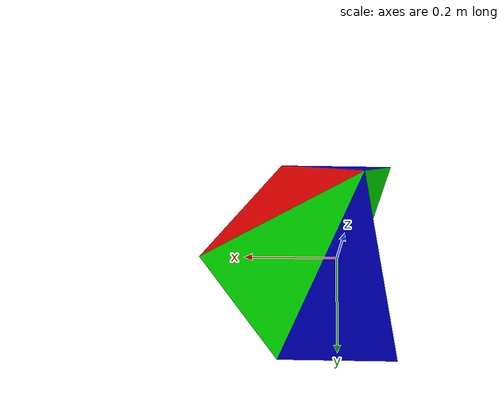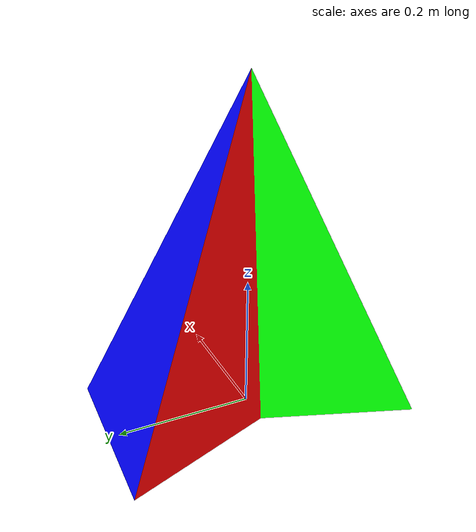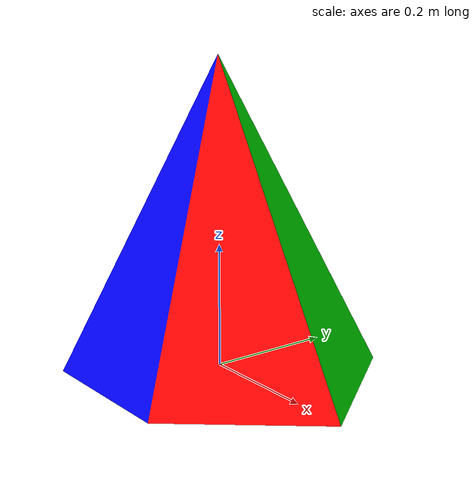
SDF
<?xml version="1.0"?>
<sdf version="1.6">
  <model name="6pyramid">
    <static>true</static>
    <pose>0 0 0 0 0 0</pose>
    <link name="link1">

      <visual name="visual1">
        <geometry>
          <mesh>
            <uri>model://6pyramid/meshes/6pyramid.DAE</uri>
   	    <scale>1 1 1</scale>
          </mesh>
        </geometry>
      </visual>

    </link>
  </model>
</sdf>
